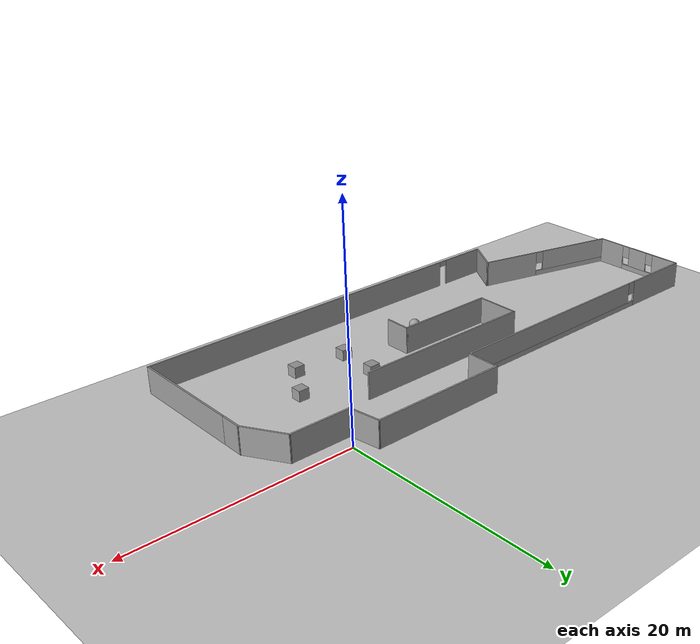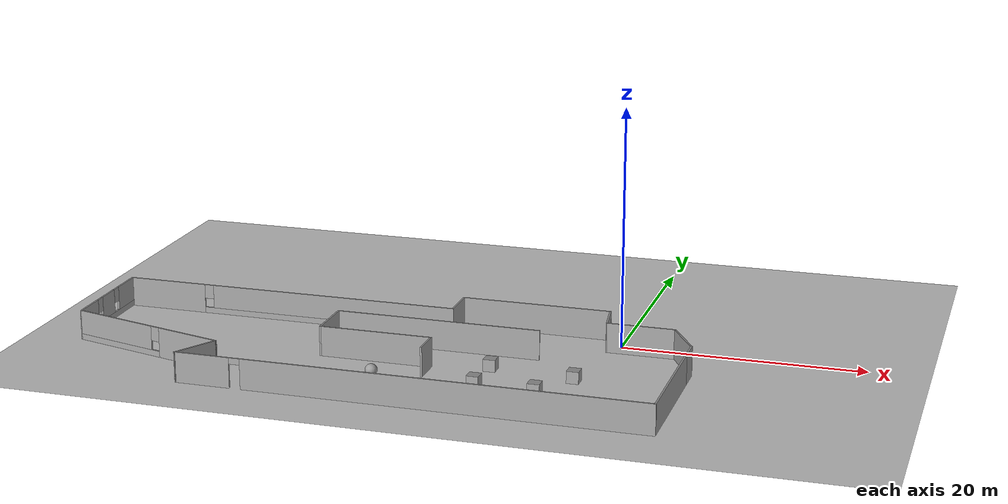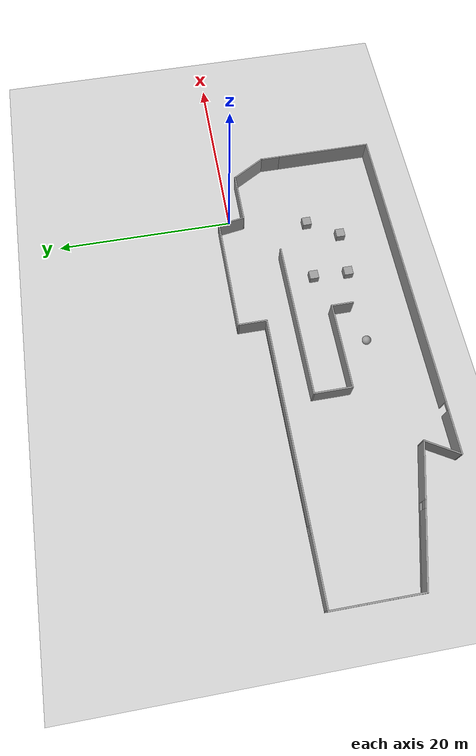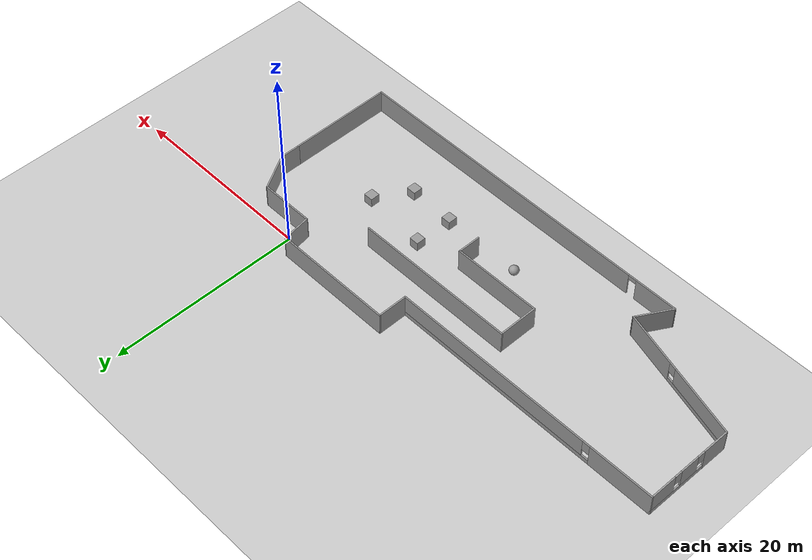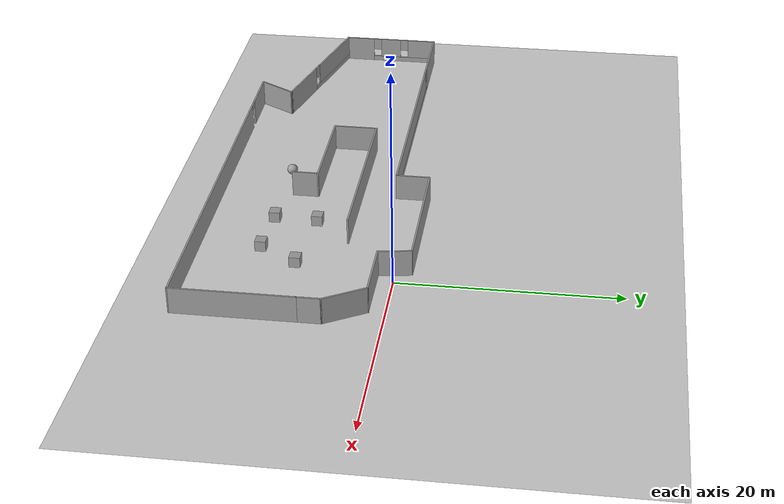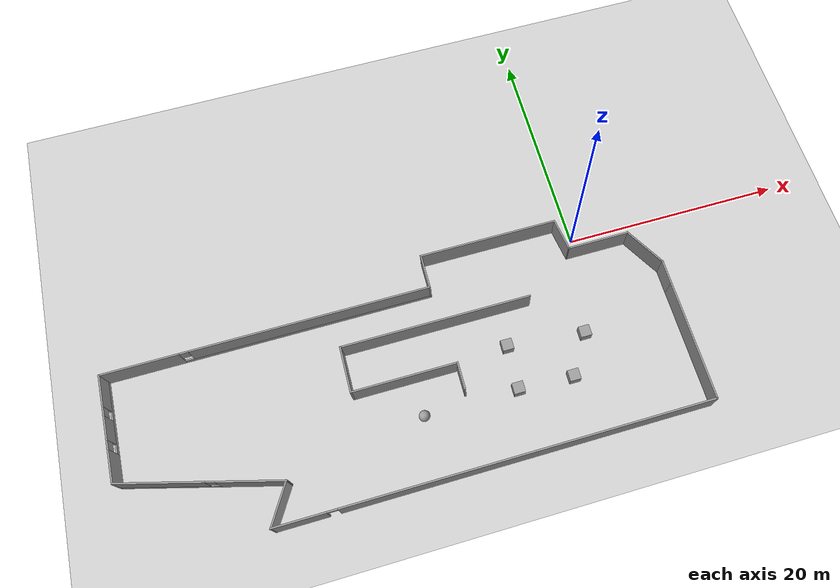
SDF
<sdf version="1.7">
 <world name="default">
  <light name="sun" type="directional">
   <pose>0 0 10 0 -0 0</pose>
   <diffuse>0.8 0.8 0.8 1</diffuse>
   <specular>0.2 0.2 0.2 1</specular>
   <attenuation>
    <range>1000</range>
    <constant>0.9</constant>
    <linear>0.01</linear>
    <quadratic>0.001</quadratic>
   </attenuation>
   <direction>-0.5 0.1 -0.9</direction>
   <spot><inner_angle>0</inner_angle><outer_angle>0</outer_angle><falloff>0</falloff></spot>
  </light>
  <model name="ground_plane">
   <static>1</static>
   <link name="link">
    <collision name="collision">
     <geometry><plane><normal>0 0 1</normal><size>100 100</size></plane></geometry>
     <surface>
      <contact><collide_bitmask>65535</collide_bitmask></contact>
      <friction><ode><mu>100</mu><mu2>50</mu2></ode></friction>
     </surface>
    </collision>
    <visual name="visual">
     <cast_shadows>0</cast_shadows>
     <geometry><plane><normal>0 0 1</normal><size>100 100</size></plane></geometry>
     <material>
      <script><uri>file://media/materials/scripts/gazebo.material</uri><name>Gazebo/Grey</name></script>
     </material>
    </visual>
   </link>
  </model>
  <gravity>0 0 -9.8</gravity>
  <magnetic_field>6e-06 2.3e-05 -4.2e-05</magnetic_field>
  <atmosphere type="adiabatic"/>
  <physics type="ode">
   <max_step_size>0.001</max_step_size>
   <real_time_factor>1</real_time_factor>
   <real_time_update_rate>1000</real_time_update_rate>
  </physics>
  <scene><ambient>0.4 0.4 0.4 1</ambient><background>0.7 0.7 0.7 1</background><shadows>1</shadows></scene>
  <spherical_coordinates>
   <surface_model>EARTH_WGS84</surface_model>
   <latitude_deg>0</latitude_deg>
   <longitude_deg>0</longitude_deg>
   <elevation>0</elevation>
   <heading_deg>0</heading_deg>
  </spherical_coordinates>
  <model name="maze">
   <pose>-18.1802 -8.26724 0 0 -0 0</pose>
   <link name="Wall_0">
    <collision name="Wall_0_Collision">
     <geometry><box><size>5.75 0.15 2.5</size></box></geometry>
     <pose>0 0 1.25 0 -0 0</pose>
    </collision>
    <visual name="Wall_0_Visual">
     <pose>0 0 1.25 0 -0 0</pose>
     <geometry><box><size>5.75 0.15 2.5</size></box></geometry>
     <material>
      <script><uri>file://media/materials/scripts/gazebo.material</uri><name>Gazebo/Grey</name></script>
      <ambient>1 1 1 1</ambient>
     </material>
     <meta><layer>0</layer></meta>
    </visual>
    <pose>20.042 6.79246 0 0 -0 0</pose>
   </link>
   <link name="Wall_1">
    <collision name="Wall_1_Collision">
     <geometry><box><size>4.25 0.15 2.5</size></box></geometry>
     <pose>0 0 1.25 0 -0 0</pose>
    </collision>
    <visual name="Wall_1_Visual">
     <pose>0 0 1.25 0 -0 0</pose>
     <geometry><box><size>4.25 0.15 2.5</size></box></geometry>
     <material>
      <script><uri>file://media/materials/scripts/gazebo.material</uri><name>Gazebo/Grey</name></script>
      <ambient>1 1 1 1</ambient>
     </material>
     <meta><layer>0</layer></meta>
    </visual>
    <pose>23.867 5.01711 0 0 -0 -1.0472</pose>
   </link>
   <link name="Wall_10">
    <collision name="Wall_10_Collision">
     <geometry><box><size>12.75 0.15 2.5</size></box></geometry>
     <pose>0 0 1.25 0 -0 0</pose>
    </collision>
    <visual name="Wall_10_Visual">
     <pose>0 0 1.25 0 -0 0</pose>
     <geometry><box><size>12.75 0.15 2.5</size></box></geometry>
     <material>
      <script><uri>file://media/materials/scripts/gazebo.material</uri><name>Gazebo/Grey</name></script>
      <ambient>1 1 1 1</ambient>
     </material>
     <meta><layer>0</layer></meta>
    </visual>
    <pose>10.4974 9.7253 0 0 -0 0</pose>
   </link>
   <link name="Wall_11">
    <collision name="Wall_11_Collision">
     <geometry><box><size>3.11634 0.15 2.5</size></box></geometry>
     <pose>0 0 1.25 0 -0 0</pose>
    </collision>
    <visual name="Wall_11_Visual">
     <pose>0 0 1.25 0 -0 0</pose>
     <geometry><box><size>3.11634 0.15 2.5</size></box></geometry>
     <material>
      <script><uri>file://media/materials/scripts/gazebo.material</uri><name>Gazebo/Grey</name></script>
      <ambient>1 1 1 1</ambient>
     </material>
     <meta><layer>0</layer></meta>
    </visual>
    <pose>17.0197 8.25888 0 0 -0 -1.42036</pose>
   </link>
   <link name="Wall_13">
    <collision name="Wall_13_Collision">
     <geometry><box><size>17.25 0.15 2.5</size></box></geometry>
     <pose>0 0 1.25 0 -0 0</pose>
    </collision>
    <visual name="Wall_13_Visual">
     <pose>0 0 1.25 0 -0 0</pose>
     <geometry><box><size>17.25 0.15 2.5</size></box></geometry>
     <material>
      <script><uri>file://media/materials/scripts/gazebo.material</uri><name>Gazebo/Grey</name></script>
      <ambient>1 1 1 1</ambient>
     </material>
     <meta><layer>0</layer></meta>
    </visual>
    <pose>3.91143 3.40008 0 0 -0 3.14159</pose>
   </link>
   <link name="Wall_14">
    <collision name="Wall_14_Collision">
     <geometry><box><size>4.25 0.15 2.5</size></box></geometry>
     <pose>0 0 1.25 0 -0 0</pose>
    </collision>
    <visual name="Wall_14_Visual">
     <pose>0 0 1.25 0 -0 0</pose>
     <geometry><box><size>4.25 0.15 2.5</size></box></geometry>
     <material>
      <script><uri>file://media/materials/scripts/gazebo.material</uri><name>Gazebo/Grey</name></script>
      <ambient>1 1 1 1</ambient>
     </material>
     <meta><layer>0</layer></meta>
    </visual>
    <pose>-4.63857 1.35008 0 0 -0 -1.5708</pose>
   </link>
   <link name="Wall_15">
    <collision name="Wall_15_Collision">
     <geometry><box><size>9.5 0.15 2.5</size></box></geometry>
     <pose>0 0 1.25 0 -0 0</pose>
    </collision>
    <visual name="Wall_15_Visual">
     <pose>0 0 1.25 0 -0 0</pose>
     <geometry><box><size>9.5 0.15 2.5</size></box></geometry>
     <material>
      <script><uri>file://media/materials/scripts/gazebo.material</uri><name>Gazebo/Grey</name></script>
      <ambient>1 1 1 1</ambient>
     </material>
     <meta><layer>0</layer></meta>
    </visual>
    <pose>0.036432 -0.699918 0 0 -0 0</pose>
   </link>
   <link name="Wall_16">
    <collision name="Wall_16_Collision">
     <geometry><box><size>2.5 0.15 2.5</size></box></geometry>
     <pose>0 0 1.25 0 -0 0</pose>
    </collision>
    <visual name="Wall_16_Visual">
     <pose>0 0 1.25 0 -0 0</pose>
     <geometry><box><size>2.5 0.15 2.5</size></box></geometry>
     <material>
      <script><uri>file://media/materials/scripts/gazebo.material</uri><name>Gazebo/Grey</name></script>
      <ambient>1 1 1 1</ambient>
     </material>
     <meta><layer>0</layer></meta>
    </visual>
    <pose>4.71143 -1.87492 0 0 -0 -1.5708</pose>
   </link>
   <link name="Wall_2">
    <collision name="Wall_2_Collision">
     <geometry><box><size>2.25 0.15 2.5</size></box></geometry>
     <pose>0 0 1.25 0 -0 0</pose>
    </collision>
    <visual name="Wall_2_Visual">
     <pose>0 0 1.25 0 -0 0</pose>
     <geometry><box><size>2.25 0.15 2.5</size></box></geometry>
     <material>
      <script><uri>file://media/materials/scripts/gazebo.material</uri><name>Gazebo/Grey</name></script>
      <ambient>1 1 1 1</ambient>
     </material>
     <meta><layer>0</layer></meta>
    </visual>
    <pose>24.892 2.19176 0 0 -0 -1.5708</pose>
   </link>
   <link name="Wall_3">
    <collision name="Wall_3_Collision">
     <geometry><box><size>11 0.15 2.5</size></box></geometry>
     <pose>0 0 1.25 0 -0 0</pose>
    </collision>
    <visual name="Wall_3_Visual">
     <pose>0 0 1.25 0 -0 0</pose>
     <geometry><box><size>11 0.15 2.5</size></box></geometry>
     <material>
      <script><uri>file://media/materials/scripts/gazebo.material</uri><name>Gazebo/Grey</name></script>
      <ambient>1 1 1 1</ambient>
     </material>
     <meta><layer>0</layer></meta>
    </visual>
    <pose>24.892 -4.28324 0 0 -0 -1.5708</pose>
   </link>
   <link name="Wall_4">
    <pose>5.84198 -9.70824 0 0 -0 3.14159</pose>
    <visual name="Wall_4_Visual_0">
     <pose>-2.75705 0 1.25 0 -0 0</pose>
     <geometry><box><size>32.7359 0.15 2.5</size></box></geometry>
     <material>
      <script><uri>file://media/materials/scripts/gazebo.material</uri><name>Gazebo/Grey</name></script>
      <ambient>1 1 1 1</ambient>
     </material>
     <meta><layer>0</layer></meta>
    </visual>
    <collision name="Wall_4_Collision_0">
     <geometry><box><size>32.7359 0.15 2.5</size></box></geometry>
     <pose>-2.75705 0 1.25 0 -0 0</pose>
    </collision>
    <visual name="Wall_4_Visual_1">
     <pose>16.8179 0 1.25 0 -0 0</pose>
     <geometry><box><size>4.61411 0.15 2.5</size></box></geometry>
     <material>
      <script><uri>file://media/materials/scripts/gazebo.material</uri><name>Gazebo/Grey</name></script>
      <ambient>1 1 1 1</ambient>
     </material>
     <meta><layer>0</layer></meta>
    </visual>
    <collision name="Wall_4_Collision_1">
     <geometry><box><size>4.61411 0.15 2.5</size></box></geometry>
     <pose>16.8179 0 1.25 0 -0 0</pose>
    </collision>
    <visual name="Wall_4_Visual_2">
     <pose>14.0609 0 2.25 0 -0 0</pose>
     <geometry><box><size>0.9 0.15 0.5</size></box></geometry>
     <material>
      <script><uri>file://media/materials/scripts/gazebo.material</uri><name>Gazebo/Grey</name></script>
      <ambient>1 1 1 1</ambient>
     </material>
     <meta><layer>0</layer></meta>
    </visual>
    <collision name="Wall_4_Collision_2">
     <geometry><box><size>0.9 0.15 0.5</size></box></geometry>
     <pose>14.0609 0 2.25 0 -0 0</pose>
    </collision>
   </link>
   <link name="Wall_5">
    <collision name="Wall_5_Collision">
     <geometry><box><size>4 0.15 2.5</size></box></geometry>
     <pose>0 0 1.25 0 -0 0</pose>
    </collision>
    <visual name="Wall_5_Visual">
     <pose>0 0 1.25 0 -0 0</pose>
     <geometry><box><size>4 0.15 2.5</size></box></geometry>
     <material>
      <script><uri>file://media/materials/scripts/gazebo.material</uri><name>Gazebo/Grey</name></script>
      <ambient>1 1 1 1</ambient>
     </material>
     <meta><layer>0</layer></meta>
    </visual>
    <pose>-12.2455 -8.04115 0 0 -0 1.0472</pose>
   </link>
   <link name="Wall_6">
    <pose>-18.0928 -4.54937 0 0 -0 2.87979</pose>
    <visual name="Wall_6_Visual_0">
     <pose>-4.19644 0 1.25 0 -0 0</pose>
     <geometry><box><size>5.85711 0.15 2.5</size></box></geometry>
     <material>
      <script><uri>file://media/materials/scripts/gazebo.material</uri><name>Gazebo/Grey</name></script>
      <ambient>1 1 1 1</ambient>
     </material>
     <meta><layer>0</layer></meta>
    </visual>
    <collision name="Wall_6_Collision_0">
     <geometry><box><size>5.85711 0.15 2.5</size></box></geometry>
     <pose>-4.19644 0 1.25 0 -0 0</pose>
    </collision>
    <visual name="Wall_6_Visual_1">
     <pose>2.92856 0 0.25 0 -0 0</pose>
     <geometry><box><size>8.39289 0.15 0.5</size></box></geometry>
     <material>
      <script><uri>file://media/materials/scripts/gazebo.material</uri><name>Gazebo/Grey</name></script>
      <ambient>1 1 1 1</ambient>
     </material>
     <meta><layer>0</layer></meta>
    </visual>
    <collision name="Wall_6_Collision_1">
     <geometry><box><size>8.39289 0.15 0.5</size></box></geometry>
     <pose>2.92856 0 0.25 0 -0 0</pose>
    </collision>
    <visual name="Wall_6_Visual_2">
     <pose>3.32856 0 1.5 0 -0 0</pose>
     <geometry><box><size>7.59289 0.15 2</size></box></geometry>
     <material>
      <script><uri>file://media/materials/scripts/gazebo.material</uri><name>Gazebo/Grey</name></script>
      <ambient>1 1 1 1</ambient>
     </material>
     <meta><layer>0</layer></meta>
    </visual>
    <collision name="Wall_6_Collision_2">
     <geometry><box><size>7.59289 0.15 2</size></box></geometry>
     <pose>3.32856 0 1.5 0 -0 0</pose>
    </collision>
    <visual name="Wall_6_Visual_3">
     <pose>-0.867887 0 1.9 0 -0 0</pose>
     <geometry><box><size>0.8 0.15 1.2</size></box></geometry>
     <material>
      <script><uri>file://media/materials/scripts/gazebo.material</uri><name>Gazebo/Grey</name></script>
      <ambient>1 1 1 1</ambient>
     </material>
     <meta><layer>0</layer></meta>
    </visual>
    <collision name="Wall_6_Collision_3">
     <geometry><box><size>0.8 0.15 1.2</size></box></geometry>
     <pose>-0.867887 0 1.9 0 -0 0</pose>
    </collision>
   </link>
   <link name="Wall_7">
    <pose>-24.9026 1.9503 0 0 -0 1.5708</pose>
    <visual name="Wall_7_Visual_0">
     <pose>-3.30054 0 1.25 0 -0 0</pose>
     <geometry><box><size>2.89892 0.15 2.5</size></box></geometry>
     <material>
      <script><uri>file://media/materials/scripts/gazebo.material</uri><name>Gazebo/Grey</name></script>
      <ambient>1 1 1 1</ambient>
     </material>
     <meta><layer>0</layer></meta>
    </visual>
    <collision name="Wall_7_Collision_0">
     <geometry><box><size>2.89892 0.15 2.5</size></box></geometry>
     <pose>-3.30054 0 1.25 0 -0 0</pose>
    </collision>
    <visual name="Wall_7_Visual_1">
     <pose>1.44946 0 0.25 0 -0 0</pose>
     <geometry><box><size>6.60108 0.15 0.5</size></box></geometry>
     <material>
      <script><uri>file://media/materials/scripts/gazebo.material</uri><name>Gazebo/Grey</name></script>
      <ambient>1 1 1 1</ambient>
     </material>
     <meta><layer>0</layer></meta>
    </visual>
    <collision name="Wall_7_Collision_1">
     <geometry><box><size>6.60108 0.15 0.5</size></box></geometry>
     <pose>1.44946 0 0.25 0 -0 0</pose>
    </collision>
    <visual name="Wall_7_Visual_2">
     <pose>-0.000652 0 1.5 0 -0 0</pose>
     <geometry><box><size>2.10086 0.15 2</size></box></geometry>
     <material>
      <script><uri>file://media/materials/scripts/gazebo.material</uri><name>Gazebo/Grey</name></script>
      <ambient>1 1 1 1</ambient>
     </material>
     <meta><layer>0</layer></meta>
    </visual>
    <collision name="Wall_7_Collision_2">
     <geometry><box><size>2.10086 0.15 2</size></box></geometry>
     <pose>-0.000652 0 1.5 0 -0 0</pose>
    </collision>
    <visual name="Wall_7_Visual_3">
     <pose>3.29989 0 1.5 0 -0 0</pose>
     <geometry><box><size>2.90022 0.15 2</size></box></geometry>
     <material>
      <script><uri>file://media/materials/scripts/gazebo.material</uri><name>Gazebo/Grey</name></script>
      <ambient>1 1 1 1</ambient>
     </material>
     <meta><layer>0</layer></meta>
    </visual>
    <collision name="Wall_7_Collision_3">
     <geometry><box><size>2.90022 0.15 2</size></box></geometry>
     <pose>3.29989 0 1.5 0 -0 0</pose>
    </collision>
    <visual name="Wall_7_Visual_4">
     <pose>-1.45108 0 1.9 0 -0 0</pose>
     <geometry><box><size>0.8 0.15 1.2</size></box></geometry>
     <material>
      <script><uri>file://media/materials/scripts/gazebo.material</uri><name>Gazebo/Grey</name></script>
      <ambient>1 1 1 1</ambient>
     </material>
     <meta><layer>0</layer></meta>
    </visual>
    <collision name="Wall_7_Collision_4">
     <geometry><box><size>0.8 0.15 1.2</size></box></geometry>
     <pose>-1.45108 0 1.9 0 -0 0</pose>
    </collision>
    <visual name="Wall_7_Visual_5">
     <pose>1.44978 0 1.9 0 -0 0</pose>
     <geometry><box><size>0.8 0.15 1.2</size></box></geometry>
     <material>
      <script><uri>file://media/materials/scripts/gazebo.material</uri><name>Gazebo/Grey</name></script>
      <ambient>1 1 1 1</ambient>
     </material>
     <meta><layer>0</layer></meta>
    </visual>
    <collision name="Wall_7_Collision_5">
     <geometry><box><size>0.8 0.15 1.2</size></box></geometry>
     <pose>1.44978 0 1.9 0 -0 0</pose>
    </collision>
   </link>
   <link name="Wall_8">
    <pose>-10.3526 6.6253 0 0 -0 0</pose>
    <visual name="Wall_8_Visual_0">
     <pose>-11.1713 0 1.25 0 -0 0</pose>
     <geometry><box><size>6.90747 0.15 2.5</size></box></geometry>
     <material>
      <script><uri>file://media/materials/scripts/gazebo.material</uri><name>Gazebo/Grey</name></script>
      <ambient>1 1 1 1</ambient>
     </material>
     <meta><layer>0</layer></meta>
    </visual>
    <collision name="Wall_8_Collision_0">
     <geometry><box><size>6.90747 0.15 2.5</size></box></geometry>
     <pose>-11.1713 0 1.25 0 -0 0</pose>
    </collision>
    <visual name="Wall_8_Visual_1">
     <pose>3.45373 0 0.25 0 -0 0</pose>
     <geometry><box><size>22.3425 0.15 0.5</size></box></geometry>
     <material>
      <script><uri>file://media/materials/scripts/gazebo.material</uri><name>Gazebo/Grey</name></script>
      <ambient>1 1 1 1</ambient>
     </material>
     <meta><layer>0</layer></meta>
    </visual>
    <collision name="Wall_8_Collision_1">
     <geometry><box><size>22.3425 0.15 0.5</size></box></geometry>
     <pose>3.45373 0 0.25 0 -0 0</pose>
    </collision>
    <visual name="Wall_8_Visual_2">
     <pose>3.85373 0 1.5 0 -0 0</pose>
     <geometry><box><size>21.5425 0.15 2</size></box></geometry>
     <material>
      <script><uri>file://media/materials/scripts/gazebo.material</uri><name>Gazebo/Grey</name></script>
      <ambient>1 1 1 1</ambient>
     </material>
     <meta><layer>0</layer></meta>
    </visual>
    <collision name="Wall_8_Collision_2">
     <geometry><box><size>21.5425 0.15 2</size></box></geometry>
     <pose>3.85373 0 1.5 0 -0 0</pose>
    </collision>
    <visual name="Wall_8_Visual_3">
     <pose>-7.31753 0 1.9 0 -0 0</pose>
     <geometry><box><size>0.8 0.15 1.2</size></box></geometry>
     <material>
      <script><uri>file://media/materials/scripts/gazebo.material</uri><name>Gazebo/Grey</name></script>
      <ambient>1 1 1 1</ambient>
     </material>
     <meta><layer>0</layer></meta>
    </visual>
    <collision name="Wall_8_Collision_3">
     <geometry><box><size>0.8 0.15 1.2</size></box></geometry>
     <pose>-7.31753 0 1.9 0 -0 0</pose>
    </collision>
   </link>
   <link name="Wall_9">
    <collision name="Wall_9_Collision">
     <geometry><box><size>3.25 0.15 2.5</size></box></geometry>
     <pose>0 0 1.25 0 -0 0</pose>
    </collision>
    <visual name="Wall_9_Visual">
     <pose>0 0 1.25 0 -0 0</pose>
     <geometry><box><size>3.25 0.15 2.5</size></box></geometry>
     <material>
      <script><uri>file://media/materials/scripts/gazebo.material</uri><name>Gazebo/Grey</name></script>
      <ambient>1 1 1 1</ambient>
     </material>
     <meta><layer>0</layer></meta>
    </visual>
    <pose>4.19742 8.1753 0 0 -0 1.5708</pose>
   </link>
   <static>1</static>
  </model>
  <model name="unit_box">
   <pose>-8.7331 -8.17609 0.499995 0 1e-05 0</pose>
   <link name="link">
    <inertial>
     <mass>1</mass>
     <inertia>
      <ixx>0.166667</ixx>
      <ixy>0</ixy>
      <ixz>0</ixz>
      <iyy>0.166667</iyy>
      <iyz>0</iyz>
      <izz>0.166667</izz>
     </inertia>
    </inertial>
    <collision name="collision"><geometry><box><size>1 1 1</size></box></geometry></collision>
    <visual name="visual">
     <geometry><box><size>1 1 1</size></box></geometry>
     <material>
      <script><name>Gazebo/Grey</name><uri>file://media/materials/scripts/gazebo.material</uri></script>
     </material>
    </visual>
   </link>
  </model>
  <model name="unit_sphere">
   <pose>-17.3252 -12.19 0.5 0 -0 0</pose>
   <link name="link">
    <inertial>
     <mass>1</mass>
     <inertia><ixx>0.1</ixx><ixy>0</ixy><ixz>0</ixz><iyy>0.1</iyy><iyz>0</iyz><izz>0.1</izz></inertia>
    </inertial>
    <collision name="collision"><geometry><sphere><radius>0.5</radius></sphere></geometry></collision>
    <visual name="visual">
     <geometry><sphere><radius>0.5</radius></sphere></geometry>
     <material>
      <script><name>Gazebo/Grey</name><uri>file://media/materials/scripts/gazebo.material</uri></script>
     </material>
    </visual>
   </link>
  </model>
  <model name="unit_box_0">
   <pose>-8.89882 -12.1337 0.499995 0 1e-05 0</pose>
   <link name="link">
    <inertial>
     <mass>1</mass>
     <inertia>
      <ixx>0.166667</ixx>
      <ixy>0</ixy>
      <ixz>0</ixz>
      <iyy>0.166667</iyy>
      <iyz>0</iyz>
      <izz>0.166667</izz>
     </inertia>
    </inertial>
    <collision name="collision"><geometry><box><size>1 1 1</size></box></geometry></collision>
    <visual name="visual">
     <geometry><box><size>1 1 1</size></box></geometry>
     <material>
      <script><name>Gazebo/Grey</name><uri>file://media/materials/scripts/gazebo.material</uri></script>
     </material>
    </visual>
   </link>
  </model>
  <model name="unit_box_1">
   <pose>-1.74692 -8.8744 0.499995 -1e-05 -0 0</pose>
   <link name="link">
    <inertial>
     <mass>1</mass>
     <inertia>
      <ixx>0.166667</ixx>
      <ixy>0</ixy>
      <ixz>0</ixz>
      <iyy>0.166667</iyy>
      <iyz>0</iyz>
      <izz>0.166667</izz>
     </inertia>
    </inertial>
    <collision name="collision"><geometry><box><size>1 1 1</size></box></geometry></collision>
    <visual name="visual">
     <geometry><box><size>1 1 1</size></box></geometry>
     <material>
      <script><name>Gazebo/Grey</name><uri>file://media/materials/scripts/gazebo.material</uri></script>
     </material>
    </visual>
   </link>
  </model>
  <model name="unit_box_2">
   <pose>-3.92993 -12.3811 0.5 0 -0 0</pose>
   <link name="link">
    <inertial>
     <mass>1</mass>
     <inertia>
      <ixx>0.166667</ixx>
      <ixy>0</ixy>
      <ixz>0</ixz>
      <iyy>0.166667</iyy>
      <iyz>0</iyz>
      <izz>0.166667</izz>
     </inertia>
    </inertial>
    <collision name="collision"><geometry><box><size>1 1 1</size></box></geometry></collision>
    <visual name="visual">
     <geometry><box><size>1 1 1</size></box></geometry>
     <material>
      <script><name>Gazebo/Grey</name><uri>file://media/materials/scripts/gazebo.material</uri></script>
     </material>
    </visual>
   </link>
  </model>
 </world>
</sdf>
